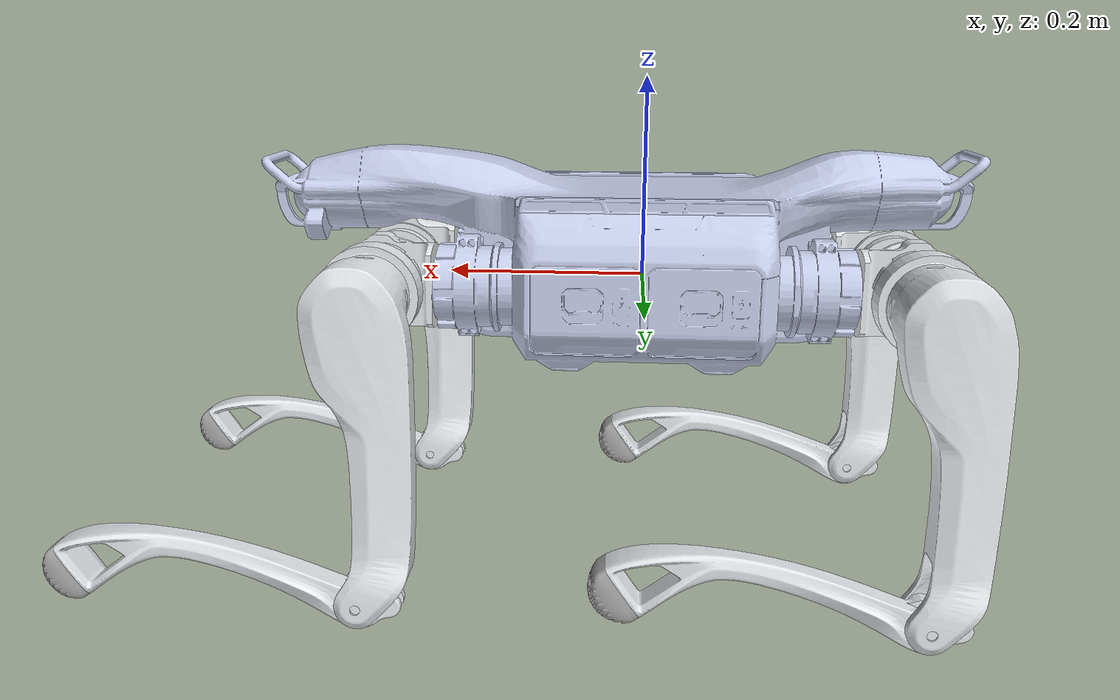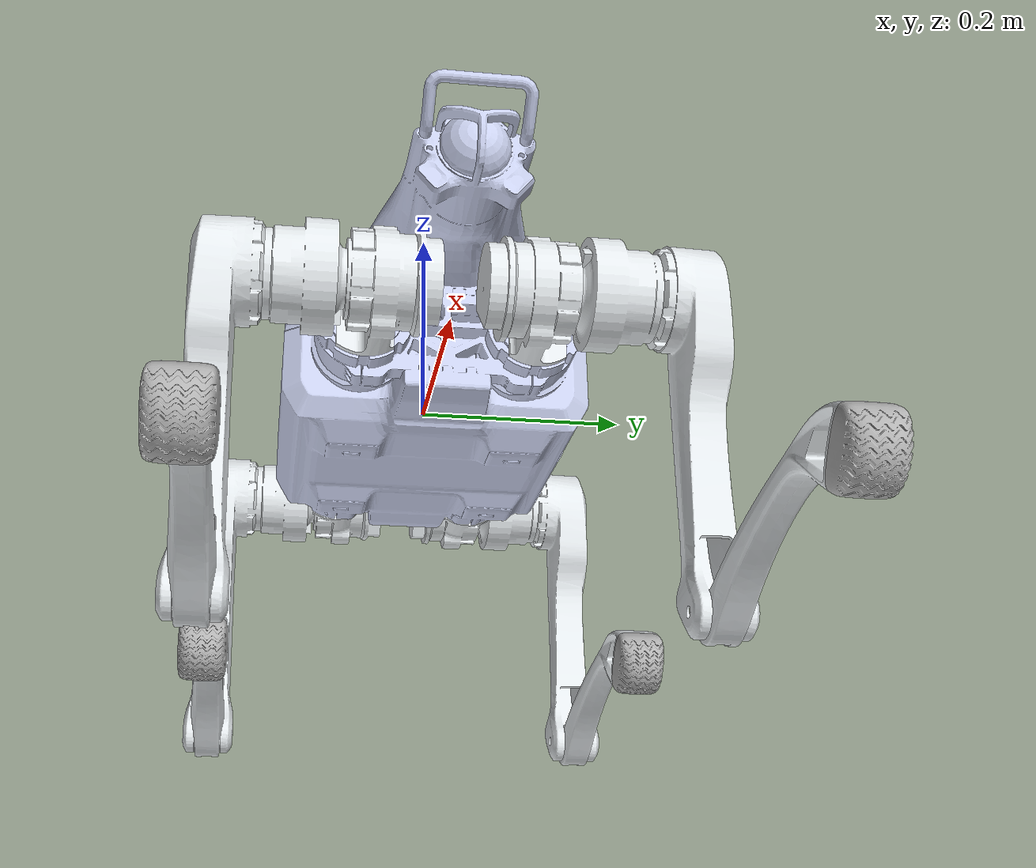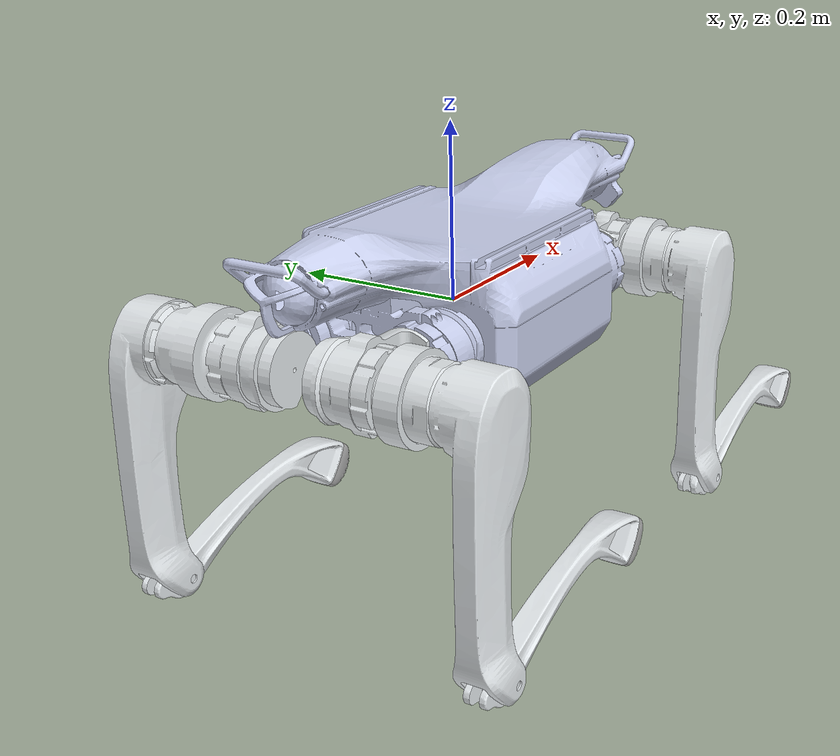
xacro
<robot name="a2" xmlns:xacro="http://www.ros.org/wiki/xacro">

  <!--
    The simulated Hesai optical frame is colocated with Unitree's front LiDAR
    housing and kept configurable for measured hardware calibration.
    ROS convention: x forward, y left, z up.
  -->
  <xacro:arg name="lidar_xyz" default="0.33767 0.0 0.08134"/>
  <xacro:arg name="lidar_rpy" default="0.0 0.0 0.0"/>
  <xacro:arg name="lidar_horizontal_samples" default="256"/>
  <xacro:arg name="lidar_update_rate" default="10"/>
  <xacro:arg name="lidar_visualize" default="false"/>
  <xacro:arg name="locomotion_mode" default="kinematic"/>
  <xacro:property name="dynamic_mode"
                  value="${'$(arg locomotion_mode)' != 'kinematic'}"/>
  <xacro:property name="assisted_mode"
                  value="${'$(arg locomotion_mode)' == 'gait_demo'}"/>

  <xacro:macro name="joint_position_controller"
               params="joint position p_gain d_gain effort topic:=''">
    <gazebo>
      <plugin filename="ignition-gazebo-joint-position-controller-system"
              name="ignition::gazebo::systems::JointPositionController">
        <joint_name>${joint}</joint_name>
        <initial_position>${position}</initial_position>
        <xacro:if value="${topic != ''}"><topic>${topic}</topic></xacro:if>
        <p_gain>${p_gain}</p_gain>
        <i_gain>0.0</i_gain>
        <d_gain>${d_gain}</d_gain>
        <cmd_max>${effort}</cmd_max>
        <cmd_min>${-effort}</cmd_min>
      </plugin>
    </gazebo>
  </xacro:macro>

  <!-- [CAUTION] uncomment when convert to mujoco -->

  <link
    name="base_link">
    <inertial>
      <origin
        xyz="6.982591E-03 -0.712858E-03 12.889523E-03"
        rpy="0 0 0" />
      <mass
        value="19.651" />
      <inertia
        ixx="141775328.248061E-09"
        ixy="400505.020171E-09"
        ixz="-6996487.718114E-09"
        iyy="407724601.564754E-09"
        iyz="-361858.857563E-09"
        izz="472247985.516800E-09" />
    </inertial>
    <visual>
      <origin
        xyz="0 0 0"
        rpy="0 0 0" />
      <geometry>
        <mesh filename="package://a2_description/meshes/base_link.STL" />
      </geometry>
      <material
        name="">
        <color rgba="0.792156862745098 0.819607843137255 0.933333333333333 1" />
      </material>
    </visual>

    <collision>
      <origin xyz="0 0 0.007" rpy="0 0 0" />
      <geometry>
        <box size="0.24 0.28 0.17" />
      </geometry>
    </collision>

    <collision>
      <origin xyz="0.25 0 0.119" rpy="0.0 0 0.0" />
      <geometry>
        <box size="0.08 0.05 0.02" />
      </geometry>
    </collision>

    <collision>
      <origin xyz="-0.22 0 0.119" rpy="-0.0 -0.03 0.0" />
      <geometry>
        <box size="0.05 0.03 0.016" />
      </geometry>
    </collision>

    <collision>
      <origin xyz="0.365 0 0.1" rpy="0 -0.7 0" />
      <geometry>
        <box size="0.06 0.1 0.01" />
      </geometry>
    </collision>

    <collision>
      <origin xyz="-0.31 0 0.112" rpy="0 0.7 0" />
      <geometry>
        <box size="0.045 0.1 0.01" />
      </geometry>
    </collision>

  </link>

  <link
    name="FL_hip">
    <inertial>
      <origin
        xyz="-2.408E-03 -16.220E-03 0.239E-03"
        rpy="0 0 0" />
      <mass
        value="1.620" />
      <inertia
        ixx="1476.261E-06"
        ixy="53.160E-06"
        ixz="-7.425E-06"
        iyy="1633.309E-06"
        iyz="-21.032E-06"
        izz="1630.804E-06" />
    </inertial>
    <visual>
      <origin
        xyz="0 0 0"
        rpy="0 0 0" />
      <geometry>
        <mesh filename="package://a2_description/meshes/left_front_Link1.STL" />
      </geometry>
      <material
        name="">
        <color rgba="0.898039215686275 0.917647058823529 0.929411764705882 1" />
      </material>
    </visual>

  </link>
  <joint
    name="FL_hip_joint"
    type="revolute">
    <origin
      xyz="0.25944 0.075113 0"
      rpy="0 0 0" />
    <parent
      link="base_link" />
    <child
      link="FL_hip" />
    <axis
      xyz="1 0 0" />
    <limit
      lower="-1.01"
      upper="1.01"
      effort="120.0"
      velocity="22.0" />
  </joint>
  <link
    name="FL_thigh">
    <inertial>
      <origin
        xyz="-3.268E-03 -31.110E-03 -53.896E-03"
        rpy="0 0 0" />
      <mass
        value="3.079" />
      <inertia
        ixx="29271.794E-06"
        ixy="337.285E-06"
        ixz="-1251.409E-06"
        iyy="26828.777E-06"
        iyz="5283.783E-06"
        izz="5121.720E-06" />
    </inertial>
    <visual>
      <origin
        xyz="0 0 0"
        rpy="0 0 0" />
      <geometry>
        <mesh
          filename="package://a2_description/meshes/left_front_Link2.STL" />
      </geometry>
      <material
        name="">
        <color
          rgba="0.898039215686275 0.917647058823529 0.929411764705882 1" />
      </material>
    </visual>
    <collision>
      <origin xyz="0.0 -0.04 0" rpy="1.571 0 0" />
      <geometry>
        <cylinder radius="0.048" length="0.12" />
      </geometry>
    </collision>

    <collision>
      <origin xyz="-0.025 0.00 -0.09" rpy="0 0.01 0" />
      <geometry>
        <box size="0.055 0.036 0.17" />
      </geometry>
    </collision>

    <collision>
      <origin xyz="-0.022 0.00 -0.27" rpy="0 -0.75 0" />
      <geometry>
        <box size="0.017 0.05 0.05" />
      </geometry>
    </collision>

  </link>
  <joint
    name="FL_thigh_joint"
    type="revolute">
    <origin
      xyz="0 0.12779 0"
      rpy="0 0 0" />
    <parent
      link="FL_hip" />
    <child
      link="FL_thigh" />
    <axis
      xyz="0 1 0" />
    <limit
      lower="-2.34"
      upper="3.15"
      effort="120.0"
      velocity="22.0" />
  </joint>
  <link
    name="FL_calf">
    <inertial>
      <origin
        xyz="12.515E-03 -0.024E-03 -117.649E-03"
        rpy="0 0 0" />
      <mass
        value="0.361" />
      <inertia
        ixx="3869.035E-06"
        ixy="-0.093E-06"
        ixz="298.636E-06"
        iyy="3945.295E-06"
        iyz="0.826E-06"
        izz="150.991E-06" />
    </inertial>
    <visual>
      <origin
        xyz="0 0 0"
        rpy="0 0 0" />
      <geometry>
        <mesh
          filename="package://a2_description/meshes/left_front_Link3.STL" />
      </geometry>
      <material
        name="">
        <color
          rgba="0.898039215686275 0.917647058823529 0.929411764705882 1" />
      </material>
    </visual>

    <collision>
      <origin xyz="0.018 -0.00 -0.08" rpy="0 -0.24 0" />
      <geometry>
        <box size="0.024 0.03 0.1" />
      </geometry>
    </collision>
    <collision>
      <origin xyz="0.033 -0.00 -0.17" rpy="0 -0.03 0" />
      <geometry>
        <box size="0.022 0.03 0.08" />
      </geometry>
    </collision>
    <collision>
      <origin xyz="0.029 -0.00 -0.236" rpy="0 0.2 0" />
      <geometry>
        <box size="0.02 0.036 0.06" />
      </geometry>
    </collision>
    <collision>
      <origin xyz="0.008 -0.00 -0.23" rpy="0 0.68 0" />
      <geometry>
        <box size="0.01 0.036 0.06" />
      </geometry>
    </collision>

  </link>
  <joint
    name="FL_calf_joint"
    type="revolute">
    <origin
      xyz="0 0 -0.275"
      rpy="0 0 0" />
    <parent
      link="FL_thigh" />
    <child
      link="FL_calf" />
    <axis
      xyz="0 1 0" />
    <limit
      lower="-2.77"
      upper="-0.54"
      effort="180.0"
      velocity="14.6667" />
  </joint>
  <link
    name="FL_foot">
    <inertial>
      <origin
        xyz="-7.846E-03 0.012E-03 -9.403E-03"
        rpy="0 0 0" />
      <mass
        value="0.046" />
      <inertia
        ixx="13.994E-06"
        ixy="-0.003E-06"
        ixz="3.992E-06"
        iyy="14.434E-06"
        iyz="-0.004E-06"
        izz="15.404E-06" />
    </inertial>
    <visual>
      <origin
        xyz="0 0 0"
        rpy="0 0 0" />
      <geometry>
        <mesh
          filename="package://a2_description/meshes/left_front_Link4.STL" />
      </geometry>
      <material
        name="">
        <color
          rgba="0.698039215686274 0.698039215686274 0.698039215686274 1" />
      </material>
    </visual>

    <collision>
      <origin xyz="0.0 -0.00 -0.0" rpy="0 0 0" />
      <geometry>
        <sphere radius="0.032" />
      </geometry>
    </collision>

  </link>
  <joint
    name="FL_foot_joint"
    type="fixed" dont_collapse="true">
    <origin
      xyz="0 0 -0.275"
      rpy="0 0 0" />
    <parent
      link="FL_calf" />
    <child
      link="FL_foot" />
    <axis
      xyz="0 0 0" />
  </joint>

  <link
    name="RL_hip">
    <inertial>
      <origin
        xyz="3.270E-03 -16.220E-03 -0.097E-03"
        rpy="0 0 0" />
      <mass
        value="1.620" />
      <inertia
        ixx="1468.092E-06"
        ixy="-105.396E-06"
        ixz="-7.294E-06"
        iyy="1625.457E-06"
        iyz="-0.444E-06"
        izz="1631.122E-06" />
    </inertial>
    <visual>
      <origin
        xyz="0 0 0"
        rpy="0 0 0" />
      <geometry>
        <mesh
          filename="package://a2_description/meshes/left_hind_Link1.STL" />
      </geometry>
      <material
        name="">
        <color
          rgba="0.898039215686275 0.917647058823529 0.929411764705882 1" />
      </material>
    </visual>

  </link>
  <joint
    name="RL_hip_joint"
    type="revolute">
    <origin
      xyz="-0.25944 0.075113 0"
      rpy="0 0 0" />
    <parent
      link="base_link" />
    <child
      link="RL_hip" />
    <axis
      xyz="1 0 0" />
    <limit
      lower="-1.01"
      upper="1.01"
      effort="120.0"
      velocity="22.0" />
  </joint>
  <link
    name="RL_thigh">
    <inertial>
      <origin
        xyz="-3.268E-03 -31.110E-03 -53.896E-03"
        rpy="0 0 0" />
      <mass
        value="3.079" />
      <inertia
        ixx="29271.794E-06"
        ixy="337.285E-06"
        ixz="-1251.409E-06"
        iyy="26828.777E-06"
        iyz="5283.783E-06"
        izz="5121.720E-06" />
    </inertial>
    <visual>
      <origin
        xyz="0 0 0"
        rpy="0 0 0" />
      <geometry>
        <mesh
          filename="package://a2_description/meshes/left_hind_Link2.STL" />
      </geometry>
      <material
        name="">
        <color
          rgba="0.898039215686275 0.917647058823529 0.929411764705882 1" />
      </material>
    </visual>

    <collision>
      <origin xyz="0.0 -0.04 0" rpy="1.571 0 0" />
      <geometry>
        <cylinder radius="0.048" length="0.12" />
      </geometry>
    </collision>

    <collision>
      <origin xyz="-0.025 0.00 -0.09" rpy="0 0.01 0" />
      <geometry>
        <box size="0.055 0.036 0.17" />
      </geometry>
    </collision>

    <collision>
      <origin xyz="-0.022 0.00 -0.27" rpy="0 -0.75 0" />
      <geometry>
        <box size="0.017 0.05 0.05" />
      </geometry>
    </collision>

  </link>
  <joint
    name="RL_thigh_joint"
    type="revolute">
    <origin
      xyz="0 0.12779 0"
      rpy="0 0 0" />
    <parent
      link="RL_hip" />
    <child
      link="RL_thigh" />
    <axis
      xyz="0 1 0" />
    <limit
      lower="-1.56"
      upper="3.94"
      effort="120.0"
      velocity="22.0" />
  </joint>
  <link
    name="RL_calf">
    <inertial>
      <origin
        xyz="12.515E-03 -0.024E-03 -117.649E-03"
        rpy="0 0 0" />
      <mass
        value="0.361" />
      <inertia
        ixx="3869.035E-06"
        ixy="-0.093E-06"
        ixz="298.636E-06"
        iyy="3945.295E-06"
        iyz="0.826E-06"
        izz="150.991E-06" />
    </inertial>
    <visual>
      <origin
        xyz="0 0 0"
        rpy="0 0 0" />
      <geometry>
        <mesh
          filename="package://a2_description/meshes/left_hind_Link3.STL" />
      </geometry>
      <material
        name="">
        <color
          rgba="0.898039215686275 0.917647058823529 0.929411764705882 1" />
      </material>
    </visual>
    <collision>
      <origin xyz="0.018 -0.00 -0.08" rpy="0 -0.24 0" />
      <geometry>
        <box size="0.024 0.03 0.1" />
      </geometry>
    </collision>
    <collision>
      <origin xyz="0.033 -0.00 -0.17" rpy="0 -0.03 0" />
      <geometry>
        <box size="0.022 0.03 0.08" />
      </geometry>
    </collision>
    <collision>
      <origin xyz="0.029 -0.00 -0.236" rpy="0 0.2 0" />
      <geometry>
        <box size="0.02 0.036 0.06" />
      </geometry>
    </collision>
    <collision>
      <origin xyz="0.008 -0.00 -0.23" rpy="0 0.68 0" />
      <geometry>
        <box size="0.01 0.036 0.06" />
      </geometry>
    </collision>
  </link>
  <joint
    name="RL_calf_joint"
    type="revolute">
    <origin
      xyz="0 0 -0.275"
      rpy="0 0 0" />
    <parent
      link="RL_thigh" />
    <child
      link="RL_calf" />
    <axis
      xyz="0 1 0" />
    <limit
      lower="-2.77"
      upper="-0.54"
      effort="180.0"
      velocity="14.6667" />
  </joint>
  <link
    name="RL_foot">
    <inertial>
      <origin
        xyz="-7.846E-03 0.012E-03 -9.403E-03"
        rpy="0 0 0" />
      <mass
        value="0.046" />
      <inertia
        ixx="13.994E-06"
        ixy="-0.003E-06"
        ixz="3.992E-06"
        iyy="14.434E-06"
        iyz="-0.004E-06"
        izz="15.404E-06" />
    </inertial>
    <visual>
      <origin
        xyz="0 0 0"
        rpy="0 0 0" />
      <geometry>
        <mesh
          filename="package://a2_description/meshes/left_hind_Link4.STL" />
      </geometry>
      <material
        name="">
        <color
          rgba="0.698039215686274 0.698039215686274 0.698039215686274 1" />
      </material>
    </visual>
    <collision>
      <origin xyz="0.0 -0.00 -0.0" rpy="0 0 0" />
      <geometry>
        <sphere radius="0.032" />
      </geometry>
    </collision>
  </link>
  <joint
    name="RL_foot_joint"
    type="fixed" dont_collapse="true">
    <origin
      xyz="0 0 -0.275"
      rpy="0 0 0" />
    <parent
      link="RL_calf" />
    <child
      link="RL_foot" />
    <axis
      xyz="0 0 0" />
  </joint>

  <link
    name="FR_hip">
    <inertial>
      <origin
        xyz="-2.465E-03 16.220E-03 0.318E-03"
        rpy="0 0 0" />
      <mass
        value="1.620" />
      <inertia
        ixx="1483.677E-06"
        ixy="-56.616E-06"
        ixz="-5.890E-06"
        iyy="1632.784E-06"
        iyz="25.536E-06"
        izz="1622.864E-06" />
    </inertial>
    <visual>
      <origin
        xyz="0 0 0"
        rpy="0 0 0" />
      <geometry>
        <mesh
          filename="package://a2_description/meshes/right_front_Link1.STL" />
      </geometry>
      <material
        name="">
        <color
          rgba="0.898039215686275 0.917647058823529 0.929411764705882 1" />
      </material>
    </visual>

  </link>
  <joint
    name="FR_hip_joint"
    type="revolute">
    <origin
      xyz="0.25944 -0.075113 0"
      rpy="0 0 0" />
    <parent
      link="base_link" />
    <child
      link="FR_hip" />
    <axis
      xyz="1 0 0" />
    <limit
      lower="-1.01"
      upper="1.01"
      effort="120.0"
      velocity="22.0" />
  </joint>
  <link
    name="FR_thigh">
    <inertial>
      <origin
        xyz="-3.256E-03 31.125E-03 -53.921E-03"
        rpy="0 0 0" />
      <mass
        value="3.077" />
      <inertia
        ixx="29255.209E-06"
        ixy="-334.771E-06"
        ixz="-1255.239E-06"
        iyy="26819.094E-06"
        iyz="-5288.175E-06"
        izz="5125.147E-06" />
    </inertial>
    <visual>
      <origin
        xyz="0 0 0"
        rpy="0 0 0" />
      <geometry>
        <mesh
          filename="package://a2_description/meshes/right_front_Link2.STL" />
      </geometry>
      <material
        name="">
        <color
          rgba="0.898039215686275 0.917647058823529 0.929411764705882 1" />
      </material>
    </visual>

    <collision>
      <origin xyz="0.0 0.04 0" rpy="1.571 0 0" />
      <geometry>
        <cylinder radius="0.048" length="0.12" />
      </geometry>
    </collision>

    <collision>
      <origin xyz="-0.025 0.00 -0.09" rpy="0 0.01 0" />
      <geometry>
        <box size="0.055 0.036 0.17" />
      </geometry>
    </collision>

    <collision>
      <origin xyz="-0.022 0.00 -0.27" rpy="0 -0.75 0" />
      <geometry>
        <box size="0.017 0.05 0.05" />
      </geometry>
    </collision>

  </link>
  <joint
    name="FR_thigh_joint"
    type="revolute">
    <origin
      xyz="0 -0.12779 0"
      rpy="0 0 0" />
    <parent
      link="FR_hip" />
    <child
      link="FR_thigh" />
    <axis
      xyz="0 1 0" />
    <limit
      lower="-2.34"
      upper="3.15"
      effort="120.0"
      velocity="22.0" />
  </joint>
  <link
    name="FR_calf">
    <inertial>
      <origin
        xyz="12.515E-03 0.016E-03 -117.649E-03"
        rpy="0 0 0" />
      <mass
        value="0.361" />
      <inertia
        ixx="3869.035E-06"
        ixy="0.087E-06"
        ixz="298.636E-06"
        iyy="3945.295E-06"
        iyz="-1.285E-06"
        izz="150.991E-06" />
    </inertial>
    <visual>
      <origin
        xyz="0 0 0"
        rpy="0 0 0" />
      <geometry>
        <mesh
          filename="package://a2_description/meshes/right_front_Link3.STL" />
      </geometry>
      <material
        name="">
        <color
          rgba="0.898039215686275 0.917647058823529 0.929411764705882 1" />
      </material>
    </visual>
    <collision>
      <origin xyz="0.018 -0.00 -0.08" rpy="0 -0.24 0" />
      <geometry>
        <box size="0.024 0.03 0.1" />
      </geometry>
    </collision>
    <collision>
      <origin xyz="0.033 -0.00 -0.17" rpy="0 -0.03 0" />
      <geometry>
        <box size="0.022 0.03 0.08" />
      </geometry>
    </collision>
    <collision>
      <origin xyz="0.029 -0.00 -0.236" rpy="0 0.2 0" />
      <geometry>
        <box size="0.02 0.036 0.06" />
      </geometry>
    </collision>
    <collision>
      <origin xyz="0.008 -0.00 -0.23" rpy="0 0.68 0" />
      <geometry>
        <box size="0.01 0.036 0.06" />
      </geometry>
    </collision>
  </link>
  <joint
    name="FR_calf_joint"
    type="revolute">
    <origin
      xyz="0 0 -0.275"
      rpy="0 0 0" />
    <parent
      link="FR_thigh" />
    <child
      link="FR_calf" />
    <axis
      xyz="0 1 0" />
    <limit
      lower="-2.77"
      upper="-0.54"
      effort="180.0"
      velocity="14.6667" />
  </joint>
  <link
    name="FR_foot">
    <inertial>
      <origin
        xyz="-7.846E-03 0.012E-03 -9.403E-03"
        rpy="0 0 0" />
      <mass
        value="0.046" />
      <inertia
        ixx="13.994E-06"
        ixy="-0.003E-06"
        ixz="3.992E-06"
        iyy="14.434E-06"
        iyz="-0.004E-06"
        izz="15.404E-06" />
    </inertial>
    <visual>
      <origin
        xyz="0 0 0"
        rpy="0 0 0" />
      <geometry>
        <mesh
          filename="package://a2_description/meshes/right_front_Link4.STL" />
      </geometry>
      <material
        name="">
        <color
          rgba="0.698039215686274 0.698039215686274 0.698039215686274 1" />
      </material>
    </visual>
    <collision>
      <origin xyz="0.0 -0.00 -0.0" rpy="0 0 0" />
      <geometry>
        <sphere radius="0.032" />
      </geometry>
    </collision>
  </link>
  <joint
    name="FR_foot_joint"
    type="fixed" dont_collapse="true">
    <origin
      xyz="0 0 -0.275"
      rpy="0 0 0" />
    <parent
      link="FR_calf" />
    <child
      link="FR_foot" />
    <axis
      xyz="0 0 0" />
  </joint>

  <link
    name="RR_hip">
    <inertial>
      <origin
        xyz="3.270E-03 16.220E-03 -0.037E-03"
        rpy="0 0 0" />
      <mass
        value="1.620" />
      <inertia
        ixx="1464.949E-06"
        ixy="105.396E-06"
        ixz="-9.437E-06"
        iyy="1625.469E-06"
        iyz="4.282E-06"
        izz="1634.276E-06" />
    </inertial>
    <visual>
      <origin
        xyz="0 0 0"
        rpy="0 0 0" />
      <geometry>
        <mesh
          filename="package://a2_description/meshes/right_hind_Link1.STL" />
      </geometry>
      <material
        name="">
        <color
          rgba="0.898039215686275 0.917647058823529 0.929411764705882 1" />
      </material>
    </visual>

  </link>
  <joint
    name="RR_hip_joint"
    type="revolute">
    <origin
      xyz="-0.25944 -0.075113 0"
      rpy="0 0 0" />
    <parent
      link="base_link" />
    <child
      link="RR_hip" />
    <axis
      xyz="1 0 0" />
    <limit
      lower="-1.01"
      upper="1.01"
      effort="120.0"
      velocity="22.0" />
  </joint>
  <link
    name="RR_thigh">
    <inertial>
      <origin
        xyz="-3.256E-03 31.125E-03 -53.921E-03"
        rpy="0 0 0" />
      <mass
        value="3.077" />
      <inertia
        ixx="29255.209E-06"
        ixy="-334.771E-06"
        ixz="-1255.239E-06"
        iyy="26819.094E-06"
        iyz="-5288.175E-06"
        izz="5125.147E-06" />
    </inertial>
    <visual>
      <origin
        xyz="0 0 0"
        rpy="0 0 0" />
      <geometry>
        <mesh
          filename="package://a2_description/meshes/right_hind_Link2.STL" />
      </geometry>
      <material
        name="">
        <color
          rgba="0.898039215686275 0.917647058823529 0.929411764705882 1" />
      </material>
    </visual>
    <collision>
      <origin xyz="0.0 0.04 0" rpy="1.571 0 0" />
      <geometry>
        <cylinder radius="0.048" length="0.12" />
      </geometry>
    </collision>

    <collision>
      <origin xyz="-0.025 0.00 -0.09" rpy="0 0.01 0" />
      <geometry>
        <box size="0.055 0.036 0.17" />
      </geometry>
    </collision>

    <collision>
      <origin xyz="-0.022 0.00 -0.27" rpy="0 -0.75 0" />
      <geometry>
        <box size="0.017 0.05 0.05" />
      </geometry>
    </collision>
  </link>
  <joint
    name="RR_thigh_joint"
    type="revolute">
    <origin
      xyz="0 -0.12779 0"
      rpy="0 0 0" />
    <parent
      link="RR_hip" />
    <child
      link="RR_thigh" />
    <axis
      xyz="0 1 0" />
    <limit
      lower="-1.56"
      upper="3.94"
      effort="120.0"
      velocity="22.0" />
  </joint>
  <link
    name="RR_calf">
    <inertial>
      <origin
        xyz="12.515E-03 0.016E-03 -117.649E-03"
        rpy="0 0 0" />
      <mass
        value="0.361" />
      <inertia
        ixx="3869.035E-06"
        ixy="0.087E-06"
        ixz="298.636E-06"
        iyy="3945.295E-06"
        iyz="-1.285E-06"
        izz="150.991E-06" />
    </inertial>
    <visual>
      <origin
        xyz="0 0 0"
        rpy="0 0 0" />
      <geometry>
        <mesh
          filename="package://a2_description/meshes/right_hind_Link3.STL" />
      </geometry>
      <material
        name="">
        <color
          rgba="0.898039215686275 0.917647058823529 0.929411764705882 1" />
      </material>
    </visual>
    <collision>
      <origin xyz="0.018 -0.00 -0.08" rpy="0 -0.24 0" />
      <geometry>
        <box size="0.024 0.03 0.1" />
      </geometry>
    </collision>
    <collision>
      <origin xyz="0.033 -0.00 -0.17" rpy="0 -0.03 0" />
      <geometry>
        <box size="0.022 0.03 0.08" />
      </geometry>
    </collision>
    <collision>
      <origin xyz="0.029 -0.00 -0.236" rpy="0 0.2 0" />
      <geometry>
        <box size="0.02 0.036 0.06" />
      </geometry>
    </collision>
    <collision>
      <origin xyz="0.008 -0.00 -0.23" rpy="0 0.68 0" />
      <geometry>
        <box size="0.01 0.036 0.06" />
      </geometry>
    </collision>
  </link>
  <joint
    name="RR_calf_joint"
    type="revolute">
    <origin
      xyz="0 0 -0.275"
      rpy="0 0 0" />
    <parent
      link="RR_thigh" />
    <child
      link="RR_calf" />
    <axis
      xyz="0 1 0" />
    <limit
      lower="-2.77"
      upper="-0.54"
      effort="180.0"
      velocity="14.6667" />
  </joint>
  <link
    name="RR_foot">
    <inertial>
      <origin
        xyz="-7.846E-03 0.012E-03 -9.403E-03"
        rpy="0 0 0" />
      <mass
        value="0.046" />
      <inertia
        ixx="13.994E-06"
        ixy="-0.003E-06"
        ixz="3.992E-06"
        iyy="14.434E-06"
        iyz="-0.004E-06"
        izz="15.404E-06" />
    </inertial>
    <visual>
      <origin
        xyz="0 0 0"
        rpy="0 0 0" />
      <geometry>
        <mesh
          filename="package://a2_description/meshes/right_hind_Link4.STL" />
      </geometry>
      <material
        name="">
        <color
          rgba="0.698039215686274 0.698039215686274 0.698039215686274 1" />
      </material>
    </visual>
    <collision>
      <origin xyz="0.0 -0.00 -0.0" rpy="0 0 0" />
      <geometry>
        <sphere radius="0.032" />
      </geometry>
    </collision>
  </link>
  <joint
    name="RR_foot_joint"
    type="fixed" dont_collapse="true">
    <origin
      xyz="0 0 -0.275"
      rpy="0 0 0" />
    <parent
      link="RR_calf" />
    <child
      link="RR_foot" />
    <axis
      xyz="0 0 0" />
  </joint>

  <link name="camera_link"/>
  <joint name="camera_joint" type="fixed">
    <origin xyz="0.3381 0.0336 0.0525" rpy="0 0 0"/>
    <parent link="base_link"/>
    <child link="camera_link"/>
  </joint>

  <link name="front_lidar_link"/>
  <joint name="front_lidar_joint" type="fixed">
    <origin xyz="0.33767 0.0 0.08134" rpy="1.5708 0 1.5708"/>
    <parent link="base_link"/>
    <child link="front_lidar_link"/>
  </joint>

  <link name="rear_lidar_link"/>
  <joint name="rear_lidar_joint" type="fixed">
    <origin xyz="0.0 0.005997 -0.617643765" rpy="0 3.14159 0"/>
    <parent link="front_lidar_link"/>
    <child link="rear_lidar_link"/>
  </joint>

  <!-- Hesai's spinning axis is Z. This optical frame has no physical geometry
       or mass; it only gives the simulated JT128 the vendor's native axes at
       the existing front LiDAR housing. -->
  <link name="hesai_jt128_link"/>
  <joint name="hesai_jt128_joint" type="fixed">
    <origin xyz="$(arg lidar_xyz)" rpy="$(arg lidar_rpy)"/>
    <parent link="base_link"/>
    <child link="hesai_jt128_link"/>
  </joint>

  <!-- The simulated IMU is collocated with the LiDAR, so FAST-LIO extrinsics
       are identity. A separate link keeps the TF contract explicit. -->
  <link name="hesai_jt128_imu_link"/>
  <joint name="hesai_jt128_imu_joint" type="fixed">
    <origin xyz="0 0 0" rpy="0 0 0"/>
    <parent link="hesai_jt128_link"/>
    <child link="hesai_jt128_imu_link"/>
  </joint>

  <gazebo reference="hesai_jt128_link">
    <preserveFixedJoint>true</preserveFixedJoint>
    <sensor name="jt128_gpu_lidar" type="gpu_lidar">
      <topic>/a2/jt128</topic>
      <update_rate>$(arg lidar_update_rate)</update_rate>
      <always_on>true</always_on>
      <visualize>$(arg lidar_visualize)</visualize>
      <ignition_frame_id>hesai_jt128_link</ignition_frame_id>
      <lidar>
        <scan>
          <horizontal>
            <samples>$(arg lidar_horizontal_samples)</samples>
            <resolution>1</resolution>
            <min_angle>-3.141592653589793</min_angle>
            <max_angle>3.141592653589793</max_angle>
          </horizontal>
          <vertical>
            <samples>128</samples>
            <resolution>1</resolution>
            <min_angle>-0.4363323129985824</min_angle>
            <max_angle>0.2617993877991494</max_angle>
          </vertical>
        </scan>
        <range>
          <min>0.5</min>
          <max>50.0</max>
          <resolution>0.01</resolution>
        </range>
        <noise>
          <type>gaussian</type>
          <mean>0.0</mean>
          <stddev>0.01</stddev>
        </noise>
      </lidar>
    </sensor>
  </gazebo>

  <gazebo reference="hesai_jt128_link">
    <sensor name="jt128_imu" type="imu">
      <topic>/a2/imu_raw</topic>
      <update_rate>200</update_rate>
      <always_on>true</always_on>
      <ignition_frame_id>hesai_jt128_link</ignition_frame_id>
      <imu>
        <angular_velocity>
          <x><noise type="gaussian"><mean>0</mean><stddev>0.001</stddev></noise></x>
          <y><noise type="gaussian"><mean>0</mean><stddev>0.001</stddev></noise></y>
          <z><noise type="gaussian"><mean>0</mean><stddev>0.001</stddev></noise></z>
        </angular_velocity>
        <linear_acceleration>
          <x><noise type="gaussian"><mean>0</mean><stddev>0.02</stddev></noise></x>
          <y><noise type="gaussian"><mean>0</mean><stddev>0.02</stddev></noise></y>
          <z><noise type="gaussian"><mean>0</mean><stddev>0.02</stddev></noise></z>
        </linear_acceleration>
      </imu>
    </sensor>
  </gazebo>

  <gazebo>
    <self_collide>false</self_collide>
    <plugin filename="ignition-gazebo-odometry-publisher-system"
            name="ignition::gazebo::systems::OdometryPublisher">
      <odom_publish_frequency>50</odom_publish_frequency>
      <odom_topic>/a2/ground_truth/odom</odom_topic>
      <odom_frame>world</odom_frame>
      <robot_base_frame>base_link</robot_base_frame>
      <dimensions>3</dimensions>
    </plugin>
    <plugin filename="ignition-gazebo-joint-state-publisher-system"
            name="ignition::gazebo::systems::JointStatePublisher">
      <topic>/a2/joint_states</topic>
    </plugin>
    <xacro:unless value="${dynamic_mode}">
      <!-- Simulation-only planar base motion. Twist commands are integrated by
           Gazebo, so the LiDAR and IMU observe continuous translation and yaw. -->
      <plugin filename="ignition-gazebo-velocity-control-system"
              name="ignition::gazebo::systems::VelocityControl">
        <topic>/cmd_vel</topic>
      </plugin>
    </xacro:unless>
    <xacro:if value="${assisted_mode}">
      <plugin filename="ignition-gazebo-velocity-control-system"
              name="ignition::gazebo::systems::VelocityControl">
        <topic>/a2/base_velocity_assist</topic>
      </plugin>
    </xacro:if>
  </gazebo>

  <xacro:unless value="${dynamic_mode}">
    <!-- Conservative pose used by the localization-only rigid-body mode. -->
    <xacro:joint_position_controller joint="FL_hip_joint" position="0.0" p_gain="180.0" d_gain="8.0" effort="120.0"/>
    <xacro:joint_position_controller joint="FL_thigh_joint" position="0.4" p_gain="180.0" d_gain="8.0" effort="120.0"/>
    <xacro:joint_position_controller joint="FL_calf_joint" position="-0.8" p_gain="180.0" d_gain="8.0" effort="180.0"/>
    <xacro:joint_position_controller joint="FR_hip_joint" position="0.0" p_gain="180.0" d_gain="8.0" effort="120.0"/>
    <xacro:joint_position_controller joint="FR_thigh_joint" position="0.4" p_gain="180.0" d_gain="8.0" effort="120.0"/>
    <xacro:joint_position_controller joint="FR_calf_joint" position="-0.8" p_gain="180.0" d_gain="8.0" effort="180.0"/>
    <xacro:joint_position_controller joint="RL_hip_joint" position="0.0" p_gain="180.0" d_gain="8.0" effort="120.0"/>
    <xacro:joint_position_controller joint="RL_thigh_joint" position="0.4" p_gain="180.0" d_gain="8.0" effort="120.0"/>
    <xacro:joint_position_controller joint="RL_calf_joint" position="-0.8" p_gain="180.0" d_gain="8.0" effort="180.0"/>
    <xacro:joint_position_controller joint="RR_hip_joint" position="0.0" p_gain="180.0" d_gain="8.0" effort="120.0"/>
    <xacro:joint_position_controller joint="RR_thigh_joint" position="0.4" p_gain="180.0" d_gain="8.0" effort="120.0"/>
    <xacro:joint_position_controller joint="RR_calf_joint" position="-0.8" p_gain="180.0" d_gain="8.0" effort="180.0"/>
  </xacro:unless>

  <xacro:if value="${dynamic_mode}">
    <gazebo>
      <plugin filename="libignition-gazebo-joint-trajectory-controller-system.so"
              name="ignition::gazebo::systems::JointTrajectoryController">
        <joint_name>FL_hip_joint</joint_name>
        <joint_name>FL_thigh_joint</joint_name>
        <joint_name>FL_calf_joint</joint_name>
        <joint_name>FR_hip_joint</joint_name>
        <joint_name>FR_thigh_joint</joint_name>
        <joint_name>FR_calf_joint</joint_name>
        <joint_name>RL_hip_joint</joint_name>
        <joint_name>RL_thigh_joint</joint_name>
        <joint_name>RL_calf_joint</joint_name>
        <joint_name>RR_hip_joint</joint_name>
        <joint_name>RR_thigh_joint</joint_name>
        <joint_name>RR_calf_joint</joint_name>

        <initial_position>-0.1</initial_position>
        <initial_position>0.9</initial_position>
        <initial_position>-1.8</initial_position>
        <initial_position>0.1</initial_position>
        <initial_position>0.9</initial_position>
        <initial_position>-1.8</initial_position>
        <initial_position>-0.1</initial_position>
        <initial_position>0.9</initial_position>
        <initial_position>-1.8</initial_position>
        <initial_position>0.1</initial_position>
        <initial_position>0.9</initial_position>
        <initial_position>-1.8</initial_position>

        <position_p_gain>100</position_p_gain>
        <position_p_gain>100</position_p_gain>
        <position_p_gain>150</position_p_gain>
        <position_p_gain>100</position_p_gain>
        <position_p_gain>100</position_p_gain>
        <position_p_gain>150</position_p_gain>
        <position_p_gain>100</position_p_gain>
        <position_p_gain>100</position_p_gain>
        <position_p_gain>150</position_p_gain>
        <position_p_gain>100</position_p_gain>
        <position_p_gain>100</position_p_gain>
        <position_p_gain>150</position_p_gain>

        <position_d_gain>4</position_d_gain>
        <position_d_gain>4</position_d_gain>
        <position_d_gain>6</position_d_gain>
        <position_d_gain>4</position_d_gain>
        <position_d_gain>4</position_d_gain>
        <position_d_gain>6</position_d_gain>
        <position_d_gain>4</position_d_gain>
        <position_d_gain>4</position_d_gain>
        <position_d_gain>6</position_d_gain>
        <position_d_gain>4</position_d_gain>
        <position_d_gain>4</position_d_gain>
        <position_d_gain>6</position_d_gain>

        <position_cmd_min>-120</position_cmd_min>
        <position_cmd_min>-120</position_cmd_min>
        <position_cmd_min>-180</position_cmd_min>
        <position_cmd_min>-120</position_cmd_min>
        <position_cmd_min>-120</position_cmd_min>
        <position_cmd_min>-180</position_cmd_min>
        <position_cmd_min>-120</position_cmd_min>
        <position_cmd_min>-120</position_cmd_min>
        <position_cmd_min>-180</position_cmd_min>
        <position_cmd_min>-120</position_cmd_min>
        <position_cmd_min>-120</position_cmd_min>
        <position_cmd_min>-180</position_cmd_min>

        <position_cmd_max>120</position_cmd_max>
        <position_cmd_max>120</position_cmd_max>
        <position_cmd_max>180</position_cmd_max>
        <position_cmd_max>120</position_cmd_max>
        <position_cmd_max>120</position_cmd_max>
        <position_cmd_max>180</position_cmd_max>
        <position_cmd_max>120</position_cmd_max>
        <position_cmd_max>120</position_cmd_max>
        <position_cmd_max>180</position_cmd_max>
        <position_cmd_max>120</position_cmd_max>
        <position_cmd_max>120</position_cmd_max>
        <position_cmd_max>180</position_cmd_max>
      </plugin>
    </gazebo>
  </xacro:if>

</robot>
